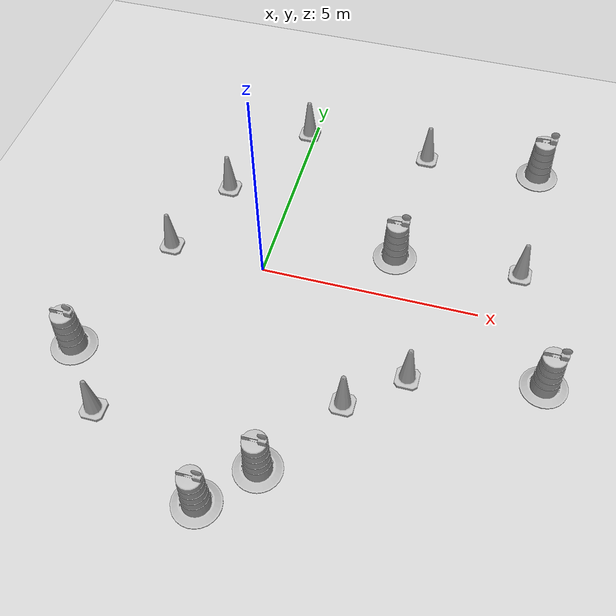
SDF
<sdf version="1.7">
 <world name="default">
  <light name="sun" type="directional">
   <pose>0 0 10 0 -0 0</pose>
   <diffuse>0.8 0.8 0.8 1</diffuse>
   <specular>0.2 0.2 0.2 1</specular>
   <attenuation>
    <range>1000</range>
    <constant>0.9</constant>
    <linear>0.01</linear>
    <quadratic>0.001</quadratic>
   </attenuation>
   <direction>-0.5 0.1 -0.9</direction>
   <spot><inner_angle>0</inner_angle><outer_angle>0</outer_angle><falloff>0</falloff></spot>
  </light>
  <model name="ground_plane">
   <static>1</static>
   <link name="link">
    <collision name="collision">
     <geometry><plane><normal>0 0 1</normal><size>100 100</size></plane></geometry>
     <surface>
      <contact><collide_bitmask>65535</collide_bitmask></contact>
      <friction><ode><mu>100</mu><mu2>50</mu2></ode></friction>
     </surface>
    </collision>
    <visual name="visual">
     <cast_shadows>0</cast_shadows>
     <geometry><plane><normal>0 0 1</normal><size>100 100</size></plane></geometry>
     <material>
      <script><uri>file://media/materials/scripts/gazebo.material</uri><name>Gazebo/Grey</name></script>
     </material>
    </visual>
   </link>
  </model>
  <gravity>0 0 -9.8</gravity>
  <magnetic_field>6e-06 2.3e-05 -4.2e-05</magnetic_field>
  <atmosphere type="adiabatic"/>
  <physics type="ode">
   <max_step_size>0.001</max_step_size>
   <real_time_factor>1</real_time_factor>
   <real_time_update_rate>1000</real_time_update_rate>
  </physics>
  <scene><ambient>0.4 0.4 0.4 1</ambient><background>0.7 0.7 0.7 1</background><shadows>1</shadows></scene>
  <spherical_coordinates>
   <surface_model>EARTH_WGS84</surface_model>
   <latitude_deg>0</latitude_deg>
   <longitude_deg>0</longitude_deg>
   <elevation>0</elevation>
   <heading_deg>0</heading_deg>
  </spherical_coordinates>
  <model name="Construction Cone">
   <link name="link">
    <collision name="collision">
     <geometry>
      <mesh><scale>10 10 10</scale><uri>model://construction_cone/meshes/construction_cone.dae</uri></mesh>
     </geometry>
    </collision>
    <visual name="visual">
     <geometry>
      <mesh><scale>10 10 10</scale><uri>model://construction_cone/meshes/construction_cone.dae</uri></mesh>
     </geometry>
    </visual>
    <inertial>
     <inertia><ixx>1</ixx><ixy>0</ixy><ixz>0</ixz><iyy>1</iyy><iyz>0</iyz><izz>1</izz></inertia>
     <mass>1</mass>
    </inertial>
   </link>
   <pose>2.65274 -2.96549 0 -0 -0 -0</pose>
  </model>
  <model name="Construction Barrel">
   <link name="link">
    <inertial>
     <pose>0 0 0.4 0 -0 0</pose>
     <mass>500</mass>
     <inertia><ixx>51.2096</ixx><iyy>51.2096</iyy><izz>25</izz><ixy>0</ixy><ixz>0</ixz><iyz>0</iyz></inertia>
    </inertial>
    <collision name="collision">
     <geometry><mesh><uri>model://construction_barrel/meshes/construction_barrel.dae</uri></mesh></geometry>
    </collision>
    <visual name="visual">
     <geometry><mesh><uri>model://construction_barrel/meshes/construction_barrel.dae</uri></mesh></geometry>
    </visual>
   </link>
   <pose>1.39921 -4.7701 -1e-06 5e-06 -3e-06 -2.6e-05</pose>
  </model>
  <model name="Construction Cone_0">
   <link name="link">
    <collision name="collision">
     <geometry>
      <mesh><scale>10 10 10</scale><uri>model://construction_cone/meshes/construction_cone.dae</uri></mesh>
     </geometry>
    </collision>
    <visual name="visual">
     <geometry>
      <mesh><scale>10 10 10</scale><uri>model://construction_cone/meshes/construction_cone.dae</uri></mesh>
     </geometry>
    </visual>
    <inertial>
     <inertia><ixx>1</ixx><ixy>0</ixy><ixz>0</ixz><iyy>1</iyy><iyz>0</iyz><izz>1</izz></inertia>
     <mass>1</mass>
    </inertial>
   </link>
   <pose>-2.27716 0.135457 -0 0 -1e-06 0</pose>
  </model>
  <model name="Construction Cone_1">
   <link name="link">
    <collision name="collision">
     <geometry>
      <mesh><scale>10 10 10</scale><uri>model://construction_cone/meshes/construction_cone.dae</uri></mesh>
     </geometry>
    </collision>
    <visual name="visual">
     <geometry>
      <mesh><scale>10 10 10</scale><uri>model://construction_cone/meshes/construction_cone.dae</uri></mesh>
     </geometry>
    </visual>
    <inertial>
     <inertia><ixx>1</ixx><ixy>0</ixy><ixz>0</ixz><iyy>1</iyy><iyz>0</iyz><izz>1</izz></inertia>
     <mass>1</mass>
    </inertial>
   </link>
   <pose>-2.2506 -4.37942 -0 0 -1e-06 0</pose>
  </model>
  <model name="Construction Barrel_0">
   <link name="link">
    <inertial>
     <pose>0 0 0.4 0 -0 0</pose>
     <mass>500</mass>
     <inertia><ixx>51.2096</ixx><iyy>51.2096</iyy><izz>25</izz><ixy>0</ixy><ixz>0</ixz><iyz>0</iyz></inertia>
    </inertial>
    <collision name="collision">
     <geometry><mesh><uri>model://construction_barrel/meshes/construction_barrel.dae</uri></mesh></geometry>
    </collision>
    <visual name="visual">
     <geometry><mesh><uri>model://construction_barrel/meshes/construction_barrel.dae</uri></mesh></geometry>
    </visual>
   </link>
   <pose>-3.3121 -3.03918 0 0 0 -2.1e-05</pose>
  </model>
  <model name="Construction Barrel_1">
   <link name="link">
    <inertial>
     <pose>0 0 0.4 0 -0 0</pose>
     <mass>500</mass>
     <inertia><ixx>51.2096</ixx><iyy>51.2096</iyy><izz>25</izz><ixy>0</ixy><ixz>0</ixz><iyz>0</iyz></inertia>
    </inertial>
    <collision name="collision">
     <geometry><mesh><uri>model://construction_barrel/meshes/construction_barrel.dae</uri></mesh></geometry>
    </collision>
    <visual name="visual">
     <geometry><mesh><uri>model://construction_barrel/meshes/construction_barrel.dae</uri></mesh></geometry>
    </visual>
   </link>
   <pose>2.87267 1.14293 -1e-06 -0 5e-06 -1.7e-05</pose>
  </model>
  <model name="Construction Cone_clone">
   <link name="link">
    <collision name="collision">
     <geometry>
      <mesh><scale>10 10 10</scale><uri>model://construction_cone/meshes/construction_cone.dae</uri></mesh>
     </geometry>
    </collision>
    <visual name="visual">
     <geometry>
      <mesh><scale>10 10 10</scale><uri>model://construction_cone/meshes/construction_cone.dae</uri></mesh>
     </geometry>
    </visual>
    <inertial>
     <inertia><ixx>1</ixx><ixy>0</ixy><ixz>0</ixz><iyy>1</iyy><iyz>0</iyz><izz>1</izz></inertia>
     <mass>1</mass>
    </inertial>
   </link>
   <pose>-1.55706 2.25812 0 -0 -0 -0</pose>
  </model>
  <model name="Construction Cone_clone_0">
   <link name="link">
    <collision name="collision">
     <geometry>
      <mesh><scale>10 10 10</scale><uri>model://construction_cone/meshes/construction_cone.dae</uri></mesh>
     </geometry>
    </collision>
    <visual name="visual">
     <geometry>
      <mesh><scale>10 10 10</scale><uri>model://construction_cone/meshes/construction_cone.dae</uri></mesh>
     </geometry>
    </visual>
    <inertial>
     <inertia><ixx>1</ixx><ixy>0</ixy><ixz>0</ixz><iyy>1</iyy><iyz>0</iyz><izz>1</izz></inertia>
     <mass>1</mass>
    </inertial>
   </link>
   <pose>3.80945 -2.01831 -0 0 -1e-06 0</pose>
  </model>
  <model name="Construction Cone_clone_1">
   <link name="link">
    <collision name="collision">
     <geometry>
      <mesh><scale>10 10 10</scale><uri>model://construction_cone/meshes/construction_cone.dae</uri></mesh>
     </geometry>
    </collision>
    <visual name="visual">
     <geometry>
      <mesh><scale>10 10 10</scale><uri>model://construction_cone/meshes/construction_cone.dae</uri></mesh>
     </geometry>
    </visual>
    <inertial>
     <inertia><ixx>1</ixx><ixy>0</ixy><ixz>0</ixz><iyy>1</iyy><iyz>0</iyz><izz>1</izz></inertia>
     <mass>1</mass>
    </inertial>
   </link>
   <pose>5.76606 1.34424 -0 0 -0 0</pose>
  </model>
  <model name="Construction Cone_clone_2">
   <link name="link">
    <collision name="collision">
     <geometry>
      <mesh><scale>10 10 10</scale><uri>model://construction_cone/meshes/construction_cone.dae</uri></mesh>
     </geometry>
    </collision>
    <visual name="visual">
     <geometry>
      <mesh><scale>10 10 10</scale><uri>model://construction_cone/meshes/construction_cone.dae</uri></mesh>
     </geometry>
    </visual>
    <inertial>
     <inertia><ixx>1</ixx><ixy>0</ixy><ixz>0</ixz><iyy>1</iyy><iyz>0</iyz><izz>1</izz></inertia>
     <mass>1</mass>
    </inertial>
   </link>
   <pose>3 4.52068 -0 0 -0 0</pose>
  </model>
  <model name="Construction Cone_clone_3">
   <link name="link">
    <collision name="collision">
     <geometry>
      <mesh><scale>10 10 10</scale><uri>model://construction_cone/meshes/construction_cone.dae</uri></mesh>
     </geometry>
    </collision>
    <visual name="visual">
     <geometry>
      <mesh><scale>10 10 10</scale><uri>model://construction_cone/meshes/construction_cone.dae</uri></mesh>
     </geometry>
    </visual>
    <inertial>
     <inertia><ixx>1</ixx><ixy>0</ixy><ixz>0</ixz><iyy>1</iyy><iyz>0</iyz><izz>1</izz></inertia>
     <mass>1</mass>
    </inertial>
   </link>
   <pose>-0.152797 4.64479 -0 0 -0 0</pose>
  </model>
  <model name="Construction Barrel_1_clone">
   <link name="link">
    <inertial>
     <pose>0 0 0.4 0 -0 0</pose>
     <mass>500</mass>
     <inertia><ixx>51.2096</ixx><iyy>51.2096</iyy><izz>25</izz><ixy>0</ixy><ixz>0</ixz><iyz>0</iyz></inertia>
    </inertial>
    <collision name="collision">
     <geometry><mesh><uri>model://construction_barrel/meshes/construction_barrel.dae</uri></mesh></geometry>
    </collision>
    <visual name="visual">
     <geometry><mesh><uri>model://construction_barrel/meshes/construction_barrel.dae</uri></mesh></geometry>
    </visual>
   </link>
   <pose>6.60598 -1.4817 -1e-06 -3e-06 -1e-06 -1.7e-05</pose>
  </model>
  <model name="Construction Barrel_1_clone_0">
   <link name="link">
    <inertial>
     <pose>0 0 0.4 0 -0 0</pose>
     <mass>500</mass>
     <inertia><ixx>51.2096</ixx><iyy>51.2096</iyy><izz>25</izz><ixy>0</ixy><ixz>0</ixz><iyz>0</iyz></inertia>
    </inertial>
    <collision name="collision">
     <geometry><mesh><uri>model://construction_barrel/meshes/construction_barrel.dae</uri></mesh></geometry>
    </collision>
    <visual name="visual">
     <geometry><mesh><uri>model://construction_barrel/meshes/construction_barrel.dae</uri></mesh></geometry>
    </visual>
   </link>
   <pose>0.482548 -5.74637 -1e-06 0 5e-06 -1.8e-05</pose>
  </model>
  <model name="Construction Barrel_1_clone_1">
   <link name="link">
    <inertial>
     <pose>0 0 0.4 0 -0 0</pose>
     <mass>500</mass>
     <inertia><ixx>51.2096</ixx><iyy>51.2096</iyy><izz>25</izz><ixy>0</ixy><ixz>0</ixz><iyz>0</iyz></inertia>
    </inertial>
    <collision name="collision">
     <geometry><mesh><uri>model://construction_barrel/meshes/construction_barrel.dae</uri></mesh></geometry>
    </collision>
    <visual name="visual">
     <geometry><mesh><uri>model://construction_barrel/meshes/construction_barrel.dae</uri></mesh></geometry>
    </visual>
   </link>
   <pose>5.79015 4.63126 -2e-06 7e-06 -4e-06 -1.7e-05</pose>
  </model>
 </world>
</sdf>
